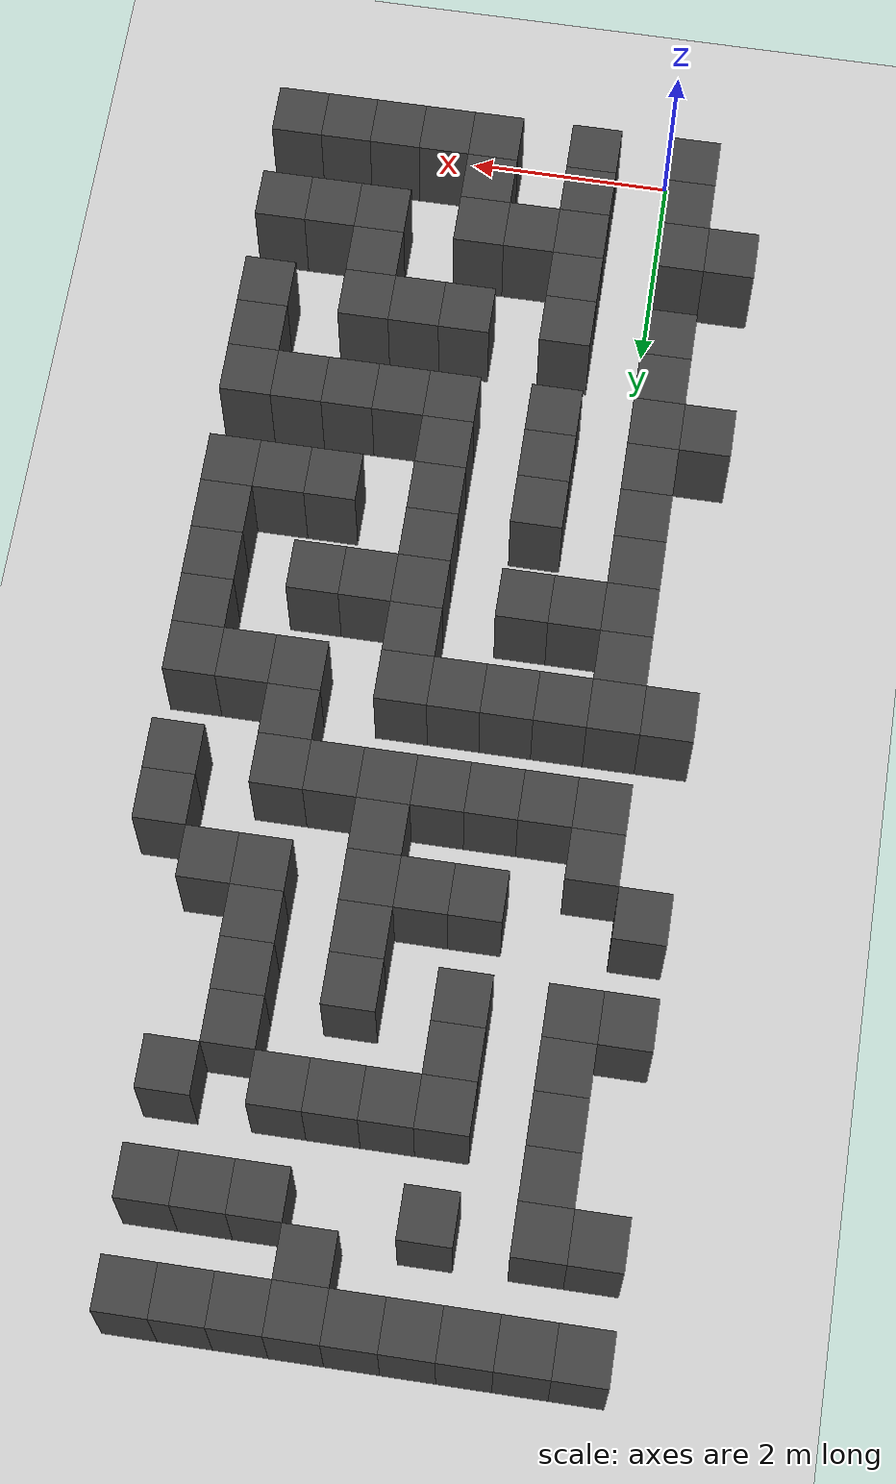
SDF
<sdf version="1.7">
 <world name="map_18347">
  <model name="ground_plane">
   <static>true</static>
   <link name="link">
    <collision name="collision">
     <geometry><plane><normal>0 0 1</normal><size>200 200</size></plane></geometry>
    </collision>
    <visual name="visual">
     <geometry><plane><normal>0 0 1</normal><size>200 200</size></plane></geometry>
     <material><ambient>0.8 0.8 0.8 1</ambient><diffuse>0.8 0.8 0.8 1</diffuse></material>
    </visual>
   </link>
  </model>
  <model name="maze_environment">
   <static>true</static>
   <link name="wall_23">
    <pose>-0.750 12.250 0.500 0 0 0</pose>
    <collision name="col"><geometry><box><size>0.5 0.5 1.0</size></box></geometry></collision>
    <visual name="vis">
     <geometry><box><size>0.5 0.5 1.0</size></box></geometry>
     <material><ambient>0.15 0.15 0.15 1</ambient><diffuse>0.25 0.25 0.25 1</diffuse></material>
    </visual>
   </link>
   <link name="wall_24">
    <pose>-0.250 12.250 0.500 0 0 0</pose>
    <collision name="col"><geometry><box><size>0.5 0.5 1.0</size></box></geometry></collision>
    <visual name="vis">
     <geometry><box><size>0.5 0.5 1.0</size></box></geometry>
     <material><ambient>0.15 0.15 0.15 1</ambient><diffuse>0.25 0.25 0.25 1</diffuse></material>
    </visual>
   </link>
   <link name="wall_25">
    <pose>0.250 12.250 0.500 0 0 0</pose>
    <collision name="col"><geometry><box><size>0.5 0.5 1.0</size></box></geometry></collision>
    <visual name="vis">
     <geometry><box><size>0.5 0.5 1.0</size></box></geometry>
     <material><ambient>0.15 0.15 0.15 1</ambient><diffuse>0.25 0.25 0.25 1</diffuse></material>
    </visual>
   </link>
   <link name="wall_26">
    <pose>0.750 12.250 0.500 0 0 0</pose>
    <collision name="col"><geometry><box><size>0.5 0.5 1.0</size></box></geometry></collision>
    <visual name="vis">
     <geometry><box><size>0.5 0.5 1.0</size></box></geometry>
     <material><ambient>0.15 0.15 0.15 1</ambient><diffuse>0.25 0.25 0.25 1</diffuse></material>
    </visual>
   </link>
   <link name="wall_27">
    <pose>1.250 12.250 0.500 0 0 0</pose>
    <collision name="col"><geometry><box><size>0.5 0.5 1.0</size></box></geometry></collision>
    <visual name="vis">
     <geometry><box><size>0.5 0.5 1.0</size></box></geometry>
     <material><ambient>0.15 0.15 0.15 1</ambient><diffuse>0.25 0.25 0.25 1</diffuse></material>
    </visual>
   </link>
   <link name="wall_28">
    <pose>1.750 12.250 0.500 0 0 0</pose>
    <collision name="col"><geometry><box><size>0.5 0.5 1.0</size></box></geometry></collision>
    <visual name="vis">
     <geometry><box><size>0.5 0.5 1.0</size></box></geometry>
     <material><ambient>0.15 0.15 0.15 1</ambient><diffuse>0.25 0.25 0.25 1</diffuse></material>
    </visual>
   </link>
   <link name="wall_29">
    <pose>2.250 12.250 0.500 0 0 0</pose>
    <collision name="col"><geometry><box><size>0.5 0.5 1.0</size></box></geometry></collision>
    <visual name="vis">
     <geometry><box><size>0.5 0.5 1.0</size></box></geometry>
     <material><ambient>0.15 0.15 0.15 1</ambient><diffuse>0.25 0.25 0.25 1</diffuse></material>
    </visual>
   </link>
   <link name="wall_30">
    <pose>2.750 12.250 0.500 0 0 0</pose>
    <collision name="col"><geometry><box><size>0.5 0.5 1.0</size></box></geometry></collision>
    <visual name="vis">
     <geometry><box><size>0.5 0.5 1.0</size></box></geometry>
     <material><ambient>0.15 0.15 0.15 1</ambient><diffuse>0.25 0.25 0.25 1</diffuse></material>
    </visual>
   </link>
   <link name="wall_31">
    <pose>3.250 12.250 0.500 0 0 0</pose>
    <collision name="col"><geometry><box><size>0.5 0.5 1.0</size></box></geometry></collision>
    <visual name="vis">
     <geometry><box><size>0.5 0.5 1.0</size></box></geometry>
     <material><ambient>0.15 0.15 0.15 1</ambient><diffuse>0.25 0.25 0.25 1</diffuse></material>
    </visual>
   </link>
   <link name="wall_54">
    <pose>1.750 11.750 0.500 0 0 0</pose>
    <collision name="col"><geometry><box><size>0.5 0.5 1.0</size></box></geometry></collision>
    <visual name="vis">
     <geometry><box><size>0.5 0.5 1.0</size></box></geometry>
     <material><ambient>0.15 0.15 0.15 1</ambient><diffuse>0.25 0.25 0.25 1</diffuse></material>
    </visual>
   </link>
   <link name="wall_75">
    <pose>-0.750 11.250 0.500 0 0 0</pose>
    <collision name="col"><geometry><box><size>0.5 0.5 1.0</size></box></geometry></collision>
    <visual name="vis">
     <geometry><box><size>0.5 0.5 1.0</size></box></geometry>
     <material><ambient>0.15 0.15 0.15 1</ambient><diffuse>0.25 0.25 0.25 1</diffuse></material>
    </visual>
   </link>
   <link name="wall_76">
    <pose>-0.250 11.250 0.500 0 0 0</pose>
    <collision name="col"><geometry><box><size>0.5 0.5 1.0</size></box></geometry></collision>
    <visual name="vis">
     <geometry><box><size>0.5 0.5 1.0</size></box></geometry>
     <material><ambient>0.15 0.15 0.15 1</ambient><diffuse>0.25 0.25 0.25 1</diffuse></material>
    </visual>
   </link>
   <link name="wall_77">
    <pose>0.750 11.250 0.500 0 0 0</pose>
    <collision name="col"><geometry><box><size>0.5 0.5 1.0</size></box></geometry></collision>
    <visual name="vis">
     <geometry><box><size>0.5 0.5 1.0</size></box></geometry>
     <material><ambient>0.15 0.15 0.15 1</ambient><diffuse>0.25 0.25 0.25 1</diffuse></material>
    </visual>
   </link>
   <link name="wall_78">
    <pose>2.250 11.250 0.500 0 0 0</pose>
    <collision name="col"><geometry><box><size>0.5 0.5 1.0</size></box></geometry></collision>
    <visual name="vis">
     <geometry><box><size>0.5 0.5 1.0</size></box></geometry>
     <material><ambient>0.15 0.15 0.15 1</ambient><diffuse>0.25 0.25 0.25 1</diffuse></material>
    </visual>
   </link>
   <link name="wall_79">
    <pose>2.750 11.250 0.500 0 0 0</pose>
    <collision name="col"><geometry><box><size>0.5 0.5 1.0</size></box></geometry></collision>
    <visual name="vis">
     <geometry><box><size>0.5 0.5 1.0</size></box></geometry>
     <material><ambient>0.15 0.15 0.15 1</ambient><diffuse>0.25 0.25 0.25 1</diffuse></material>
    </visual>
   </link>
   <link name="wall_80">
    <pose>3.250 11.250 0.500 0 0 0</pose>
    <collision name="col"><geometry><box><size>0.5 0.5 1.0</size></box></geometry></collision>
    <visual name="vis">
     <geometry><box><size>0.5 0.5 1.0</size></box></geometry>
     <material><ambient>0.15 0.15 0.15 1</ambient><diffuse>0.25 0.25 0.25 1</diffuse></material>
    </visual>
   </link>
   <link name="wall_99">
    <pose>-0.250 10.750 0.500 0 0 0</pose>
    <collision name="col"><geometry><box><size>0.5 0.5 1.0</size></box></geometry></collision>
    <visual name="vis">
     <geometry><box><size>0.5 0.5 1.0</size></box></geometry>
     <material><ambient>0.15 0.15 0.15 1</ambient><diffuse>0.25 0.25 0.25 1</diffuse></material>
    </visual>
   </link>
   <link name="wall_124">
    <pose>-0.250 10.250 0.500 0 0 0</pose>
    <collision name="col"><geometry><box><size>0.5 0.5 1.0</size></box></geometry></collision>
    <visual name="vis">
     <geometry><box><size>0.5 0.5 1.0</size></box></geometry>
     <material><ambient>0.15 0.15 0.15 1</ambient><diffuse>0.25 0.25 0.25 1</diffuse></material>
    </visual>
   </link>
   <link name="wall_125">
    <pose>0.750 10.250 0.500 0 0 0</pose>
    <collision name="col"><geometry><box><size>0.5 0.5 1.0</size></box></geometry></collision>
    <visual name="vis">
     <geometry><box><size>0.5 0.5 1.0</size></box></geometry>
     <material><ambient>0.15 0.15 0.15 1</ambient><diffuse>0.25 0.25 0.25 1</diffuse></material>
    </visual>
   </link>
   <link name="wall_126">
    <pose>1.250 10.250 0.500 0 0 0</pose>
    <collision name="col"><geometry><box><size>0.5 0.5 1.0</size></box></geometry></collision>
    <visual name="vis">
     <geometry><box><size>0.5 0.5 1.0</size></box></geometry>
     <material><ambient>0.15 0.15 0.15 1</ambient><diffuse>0.25 0.25 0.25 1</diffuse></material>
    </visual>
   </link>
   <link name="wall_127">
    <pose>1.750 10.250 0.500 0 0 0</pose>
    <collision name="col"><geometry><box><size>0.5 0.5 1.0</size></box></geometry></collision>
    <visual name="vis">
     <geometry><box><size>0.5 0.5 1.0</size></box></geometry>
     <material><ambient>0.15 0.15 0.15 1</ambient><diffuse>0.25 0.25 0.25 1</diffuse></material>
    </visual>
   </link>
   <link name="wall_128">
    <pose>2.250 10.250 0.500 0 0 0</pose>
    <collision name="col"><geometry><box><size>0.5 0.5 1.0</size></box></geometry></collision>
    <visual name="vis">
     <geometry><box><size>0.5 0.5 1.0</size></box></geometry>
     <material><ambient>0.15 0.15 0.15 1</ambient><diffuse>0.25 0.25 0.25 1</diffuse></material>
    </visual>
   </link>
   <link name="wall_129">
    <pose>3.250 10.250 0.500 0 0 0</pose>
    <collision name="col"><geometry><box><size>0.5 0.5 1.0</size></box></geometry></collision>
    <visual name="vis">
     <geometry><box><size>0.5 0.5 1.0</size></box></geometry>
     <material><ambient>0.15 0.15 0.15 1</ambient><diffuse>0.25 0.25 0.25 1</diffuse></material>
    </visual>
   </link>
   <link name="wall_150">
    <pose>-0.250 9.750 0.500 0 0 0</pose>
    <collision name="col"><geometry><box><size>0.5 0.5 1.0</size></box></geometry></collision>
    <visual name="vis">
     <geometry><box><size>0.5 0.5 1.0</size></box></geometry>
     <material><ambient>0.15 0.15 0.15 1</ambient><diffuse>0.25 0.25 0.25 1</diffuse></material>
    </visual>
   </link>
   <link name="wall_151">
    <pose>0.750 9.750 0.500 0 0 0</pose>
    <collision name="col"><geometry><box><size>0.5 0.5 1.0</size></box></geometry></collision>
    <visual name="vis">
     <geometry><box><size>0.5 0.5 1.0</size></box></geometry>
     <material><ambient>0.15 0.15 0.15 1</ambient><diffuse>0.25 0.25 0.25 1</diffuse></material>
    </visual>
   </link>
   <link name="wall_152">
    <pose>2.750 9.750 0.500 0 0 0</pose>
    <collision name="col"><geometry><box><size>0.5 0.5 1.0</size></box></geometry></collision>
    <visual name="vis">
     <geometry><box><size>0.5 0.5 1.0</size></box></geometry>
     <material><ambient>0.15 0.15 0.15 1</ambient><diffuse>0.25 0.25 0.25 1</diffuse></material>
    </visual>
   </link>
   <link name="wall_175">
    <pose>-0.750 9.250 0.500 0 0 0</pose>
    <collision name="col"><geometry><box><size>0.5 0.5 1.0</size></box></geometry></collision>
    <visual name="vis">
     <geometry><box><size>0.5 0.5 1.0</size></box></geometry>
     <material><ambient>0.15 0.15 0.15 1</ambient><diffuse>0.25 0.25 0.25 1</diffuse></material>
    </visual>
   </link>
   <link name="wall_176">
    <pose>-0.250 9.250 0.500 0 0 0</pose>
    <collision name="col"><geometry><box><size>0.5 0.5 1.0</size></box></geometry></collision>
    <visual name="vis">
     <geometry><box><size>0.5 0.5 1.0</size></box></geometry>
     <material><ambient>0.15 0.15 0.15 1</ambient><diffuse>0.25 0.25 0.25 1</diffuse></material>
    </visual>
   </link>
   <link name="wall_177">
    <pose>0.750 9.250 0.500 0 0 0</pose>
    <collision name="col"><geometry><box><size>0.5 0.5 1.0</size></box></geometry></collision>
    <visual name="vis">
     <geometry><box><size>0.5 0.5 1.0</size></box></geometry>
     <material><ambient>0.15 0.15 0.15 1</ambient><diffuse>0.25 0.25 0.25 1</diffuse></material>
    </visual>
   </link>
   <link name="wall_178">
    <pose>1.750 9.250 0.500 0 0 0</pose>
    <collision name="col"><geometry><box><size>0.5 0.5 1.0</size></box></geometry></collision>
    <visual name="vis">
     <geometry><box><size>0.5 0.5 1.0</size></box></geometry>
     <material><ambient>0.15 0.15 0.15 1</ambient><diffuse>0.25 0.25 0.25 1</diffuse></material>
    </visual>
   </link>
   <link name="wall_179">
    <pose>2.750 9.250 0.500 0 0 0</pose>
    <collision name="col"><geometry><box><size>0.5 0.5 1.0</size></box></geometry></collision>
    <visual name="vis">
     <geometry><box><size>0.5 0.5 1.0</size></box></geometry>
     <material><ambient>0.15 0.15 0.15 1</ambient><diffuse>0.25 0.25 0.25 1</diffuse></material>
    </visual>
   </link>
   <link name="wall_197">
    <pose>1.750 8.750 0.500 0 0 0</pose>
    <collision name="col"><geometry><box><size>0.5 0.5 1.0</size></box></geometry></collision>
    <visual name="vis">
     <geometry><box><size>0.5 0.5 1.0</size></box></geometry>
     <material><ambient>0.15 0.15 0.15 1</ambient><diffuse>0.25 0.25 0.25 1</diffuse></material>
    </visual>
   </link>
   <link name="wall_198">
    <pose>2.750 8.750 0.500 0 0 0</pose>
    <collision name="col"><geometry><box><size>0.5 0.5 1.0</size></box></geometry></collision>
    <visual name="vis">
     <geometry><box><size>0.5 0.5 1.0</size></box></geometry>
     <material><ambient>0.15 0.15 0.15 1</ambient><diffuse>0.25 0.25 0.25 1</diffuse></material>
    </visual>
   </link>
   <link name="wall_221">
    <pose>-0.750 8.250 0.500 0 0 0</pose>
    <collision name="col"><geometry><box><size>0.5 0.5 1.0</size></box></geometry></collision>
    <visual name="vis">
     <geometry><box><size>0.5 0.5 1.0</size></box></geometry>
     <material><ambient>0.15 0.15 0.15 1</ambient><diffuse>0.25 0.25 0.25 1</diffuse></material>
    </visual>
   </link>
   <link name="wall_222">
    <pose>0.750 8.250 0.500 0 0 0</pose>
    <collision name="col"><geometry><box><size>0.5 0.5 1.0</size></box></geometry></collision>
    <visual name="vis">
     <geometry><box><size>0.5 0.5 1.0</size></box></geometry>
     <material><ambient>0.15 0.15 0.15 1</ambient><diffuse>0.25 0.25 0.25 1</diffuse></material>
    </visual>
   </link>
   <link name="wall_223">
    <pose>1.250 8.250 0.500 0 0 0</pose>
    <collision name="col"><geometry><box><size>0.5 0.5 1.0</size></box></geometry></collision>
    <visual name="vis">
     <geometry><box><size>0.5 0.5 1.0</size></box></geometry>
     <material><ambient>0.15 0.15 0.15 1</ambient><diffuse>0.25 0.25 0.25 1</diffuse></material>
    </visual>
   </link>
   <link name="wall_224">
    <pose>1.750 8.250 0.500 0 0 0</pose>
    <collision name="col"><geometry><box><size>0.5 0.5 1.0</size></box></geometry></collision>
    <visual name="vis">
     <geometry><box><size>0.5 0.5 1.0</size></box></geometry>
     <material><ambient>0.15 0.15 0.15 1</ambient><diffuse>0.25 0.25 0.25 1</diffuse></material>
    </visual>
   </link>
   <link name="wall_225">
    <pose>2.750 8.250 0.500 0 0 0</pose>
    <collision name="col"><geometry><box><size>0.5 0.5 1.0</size></box></geometry></collision>
    <visual name="vis">
     <geometry><box><size>0.5 0.5 1.0</size></box></geometry>
     <material><ambient>0.15 0.15 0.15 1</ambient><diffuse>0.25 0.25 0.25 1</diffuse></material>
    </visual>
   </link>
   <link name="wall_226">
    <pose>3.250 8.250 0.500 0 0 0</pose>
    <collision name="col"><geometry><box><size>0.5 0.5 1.0</size></box></geometry></collision>
    <visual name="vis">
     <geometry><box><size>0.5 0.5 1.0</size></box></geometry>
     <material><ambient>0.15 0.15 0.15 1</ambient><diffuse>0.25 0.25 0.25 1</diffuse></material>
    </visual>
   </link>
   <link name="wall_249">
    <pose>-0.250 7.750 0.500 0 0 0</pose>
    <collision name="col"><geometry><box><size>0.5 0.5 1.0</size></box></geometry></collision>
    <visual name="vis">
     <geometry><box><size>0.5 0.5 1.0</size></box></geometry>
     <material><ambient>0.15 0.15 0.15 1</ambient><diffuse>0.25 0.25 0.25 1</diffuse></material>
    </visual>
   </link>
   <link name="wall_250">
    <pose>1.750 7.750 0.500 0 0 0</pose>
    <collision name="col"><geometry><box><size>0.5 0.5 1.0</size></box></geometry></collision>
    <visual name="vis">
     <geometry><box><size>0.5 0.5 1.0</size></box></geometry>
     <material><ambient>0.15 0.15 0.15 1</ambient><diffuse>0.25 0.25 0.25 1</diffuse></material>
    </visual>
   </link>
   <link name="wall_251">
    <pose>3.750 7.750 0.500 0 0 0</pose>
    <collision name="col"><geometry><box><size>0.5 0.5 1.0</size></box></geometry></collision>
    <visual name="vis">
     <geometry><box><size>0.5 0.5 1.0</size></box></geometry>
     <material><ambient>0.15 0.15 0.15 1</ambient><diffuse>0.25 0.25 0.25 1</diffuse></material>
    </visual>
   </link>
   <link name="wall_272">
    <pose>-0.250 7.250 0.500 0 0 0</pose>
    <collision name="col"><geometry><box><size>0.5 0.5 1.0</size></box></geometry></collision>
    <visual name="vis">
     <geometry><box><size>0.5 0.5 1.0</size></box></geometry>
     <material><ambient>0.15 0.15 0.15 1</ambient><diffuse>0.25 0.25 0.25 1</diffuse></material>
    </visual>
   </link>
   <link name="wall_273">
    <pose>0.250 7.250 0.500 0 0 0</pose>
    <collision name="col"><geometry><box><size>0.5 0.5 1.0</size></box></geometry></collision>
    <visual name="vis">
     <geometry><box><size>0.5 0.5 1.0</size></box></geometry>
     <material><ambient>0.15 0.15 0.15 1</ambient><diffuse>0.25 0.25 0.25 1</diffuse></material>
    </visual>
   </link>
   <link name="wall_274">
    <pose>0.750 7.250 0.500 0 0 0</pose>
    <collision name="col"><geometry><box><size>0.5 0.5 1.0</size></box></geometry></collision>
    <visual name="vis">
     <geometry><box><size>0.5 0.5 1.0</size></box></geometry>
     <material><ambient>0.15 0.15 0.15 1</ambient><diffuse>0.25 0.25 0.25 1</diffuse></material>
    </visual>
   </link>
   <link name="wall_275">
    <pose>1.250 7.250 0.500 0 0 0</pose>
    <collision name="col"><geometry><box><size>0.5 0.5 1.0</size></box></geometry></collision>
    <visual name="vis">
     <geometry><box><size>0.5 0.5 1.0</size></box></geometry>
     <material><ambient>0.15 0.15 0.15 1</ambient><diffuse>0.25 0.25 0.25 1</diffuse></material>
    </visual>
   </link>
   <link name="wall_276">
    <pose>1.750 7.250 0.500 0 0 0</pose>
    <collision name="col"><geometry><box><size>0.5 0.5 1.0</size></box></geometry></collision>
    <visual name="vis">
     <geometry><box><size>0.5 0.5 1.0</size></box></geometry>
     <material><ambient>0.15 0.15 0.15 1</ambient><diffuse>0.25 0.25 0.25 1</diffuse></material>
    </visual>
   </link>
   <link name="wall_277">
    <pose>2.250 7.250 0.500 0 0 0</pose>
    <collision name="col"><geometry><box><size>0.5 0.5 1.0</size></box></geometry></collision>
    <visual name="vis">
     <geometry><box><size>0.5 0.5 1.0</size></box></geometry>
     <material><ambient>0.15 0.15 0.15 1</ambient><diffuse>0.25 0.25 0.25 1</diffuse></material>
    </visual>
   </link>
   <link name="wall_278">
    <pose>2.750 7.250 0.500 0 0 0</pose>
    <collision name="col"><geometry><box><size>0.5 0.5 1.0</size></box></geometry></collision>
    <visual name="vis">
     <geometry><box><size>0.5 0.5 1.0</size></box></geometry>
     <material><ambient>0.15 0.15 0.15 1</ambient><diffuse>0.25 0.25 0.25 1</diffuse></material>
    </visual>
   </link>
   <link name="wall_279">
    <pose>3.750 7.250 0.500 0 0 0</pose>
    <collision name="col"><geometry><box><size>0.5 0.5 1.0</size></box></geometry></collision>
    <visual name="vis">
     <geometry><box><size>0.5 0.5 1.0</size></box></geometry>
     <material><ambient>0.15 0.15 0.15 1</ambient><diffuse>0.25 0.25 0.25 1</diffuse></material>
    </visual>
   </link>
   <link name="wall_298">
    <pose>2.750 6.750 0.500 0 0 0</pose>
    <collision name="col"><geometry><box><size>0.5 0.5 1.0</size></box></geometry></collision>
    <visual name="vis">
     <geometry><box><size>0.5 0.5 1.0</size></box></geometry>
     <material><ambient>0.15 0.15 0.15 1</ambient><diffuse>0.25 0.25 0.25 1</diffuse></material>
    </visual>
   </link>
   <link name="wall_319">
    <pose>-0.750 6.250 0.500 0 0 0</pose>
    <collision name="col"><geometry><box><size>0.5 0.5 1.0</size></box></geometry></collision>
    <visual name="vis">
     <geometry><box><size>0.5 0.5 1.0</size></box></geometry>
     <material><ambient>0.15 0.15 0.15 1</ambient><diffuse>0.25 0.25 0.25 1</diffuse></material>
    </visual>
   </link>
   <link name="wall_320">
    <pose>-0.250 6.250 0.500 0 0 0</pose>
    <collision name="col"><geometry><box><size>0.5 0.5 1.0</size></box></geometry></collision>
    <visual name="vis">
     <geometry><box><size>0.5 0.5 1.0</size></box></geometry>
     <material><ambient>0.15 0.15 0.15 1</ambient><diffuse>0.25 0.25 0.25 1</diffuse></material>
    </visual>
   </link>
   <link name="wall_321">
    <pose>0.250 6.250 0.500 0 0 0</pose>
    <collision name="col"><geometry><box><size>0.5 0.5 1.0</size></box></geometry></collision>
    <visual name="vis">
     <geometry><box><size>0.5 0.5 1.0</size></box></geometry>
     <material><ambient>0.15 0.15 0.15 1</ambient><diffuse>0.25 0.25 0.25 1</diffuse></material>
    </visual>
   </link>
   <link name="wall_322">
    <pose>0.750 6.250 0.500 0 0 0</pose>
    <collision name="col"><geometry><box><size>0.5 0.5 1.0</size></box></geometry></collision>
    <visual name="vis">
     <geometry><box><size>0.5 0.5 1.0</size></box></geometry>
     <material><ambient>0.15 0.15 0.15 1</ambient><diffuse>0.25 0.25 0.25 1</diffuse></material>
    </visual>
   </link>
   <link name="wall_323">
    <pose>1.250 6.250 0.500 0 0 0</pose>
    <collision name="col"><geometry><box><size>0.5 0.5 1.0</size></box></geometry></collision>
    <visual name="vis">
     <geometry><box><size>0.5 0.5 1.0</size></box></geometry>
     <material><ambient>0.15 0.15 0.15 1</ambient><diffuse>0.25 0.25 0.25 1</diffuse></material>
    </visual>
   </link>
   <link name="wall_324">
    <pose>1.750 6.250 0.500 0 0 0</pose>
    <collision name="col"><geometry><box><size>0.5 0.5 1.0</size></box></geometry></collision>
    <visual name="vis">
     <geometry><box><size>0.5 0.5 1.0</size></box></geometry>
     <material><ambient>0.15 0.15 0.15 1</ambient><diffuse>0.25 0.25 0.25 1</diffuse></material>
    </visual>
   </link>
   <link name="wall_325">
    <pose>2.750 6.250 0.500 0 0 0</pose>
    <collision name="col"><geometry><box><size>0.5 0.5 1.0</size></box></geometry></collision>
    <visual name="vis">
     <geometry><box><size>0.5 0.5 1.0</size></box></geometry>
     <material><ambient>0.15 0.15 0.15 1</ambient><diffuse>0.25 0.25 0.25 1</diffuse></material>
    </visual>
   </link>
   <link name="wall_326">
    <pose>3.250 6.250 0.500 0 0 0</pose>
    <collision name="col"><geometry><box><size>0.5 0.5 1.0</size></box></geometry></collision>
    <visual name="vis">
     <geometry><box><size>0.5 0.5 1.0</size></box></geometry>
     <material><ambient>0.15 0.15 0.15 1</ambient><diffuse>0.25 0.25 0.25 1</diffuse></material>
    </visual>
   </link>
   <link name="wall_327">
    <pose>3.750 6.250 0.500 0 0 0</pose>
    <collision name="col"><geometry><box><size>0.5 0.5 1.0</size></box></geometry></collision>
    <visual name="vis">
     <geometry><box><size>0.5 0.5 1.0</size></box></geometry>
     <material><ambient>0.15 0.15 0.15 1</ambient><diffuse>0.25 0.25 0.25 1</diffuse></material>
    </visual>
   </link>
   <link name="wall_346">
    <pose>-0.250 5.750 0.500 0 0 0</pose>
    <collision name="col"><geometry><box><size>0.5 0.5 1.0</size></box></geometry></collision>
    <visual name="vis">
     <geometry><box><size>0.5 0.5 1.0</size></box></geometry>
     <material><ambient>0.15 0.15 0.15 1</ambient><diffuse>0.25 0.25 0.25 1</diffuse></material>
    </visual>
   </link>
   <link name="wall_347">
    <pose>1.750 5.750 0.500 0 0 0</pose>
    <collision name="col"><geometry><box><size>0.5 0.5 1.0</size></box></geometry></collision>
    <visual name="vis">
     <geometry><box><size>0.5 0.5 1.0</size></box></geometry>
     <material><ambient>0.15 0.15 0.15 1</ambient><diffuse>0.25 0.25 0.25 1</diffuse></material>
    </visual>
   </link>
   <link name="wall_348">
    <pose>3.750 5.750 0.500 0 0 0</pose>
    <collision name="col"><geometry><box><size>0.5 0.5 1.0</size></box></geometry></collision>
    <visual name="vis">
     <geometry><box><size>0.5 0.5 1.0</size></box></geometry>
     <material><ambient>0.15 0.15 0.15 1</ambient><diffuse>0.25 0.25 0.25 1</diffuse></material>
    </visual>
   </link>
   <link name="wall_373">
    <pose>-0.250 5.250 0.500 0 0 0</pose>
    <collision name="col"><geometry><box><size>0.5 0.5 1.0</size></box></geometry></collision>
    <visual name="vis">
     <geometry><box><size>0.5 0.5 1.0</size></box></geometry>
     <material><ambient>0.15 0.15 0.15 1</ambient><diffuse>0.25 0.25 0.25 1</diffuse></material>
    </visual>
   </link>
   <link name="wall_374">
    <pose>0.250 5.250 0.500 0 0 0</pose>
    <collision name="col"><geometry><box><size>0.5 0.5 1.0</size></box></geometry></collision>
    <visual name="vis">
     <geometry><box><size>0.5 0.5 1.0</size></box></geometry>
     <material><ambient>0.15 0.15 0.15 1</ambient><diffuse>0.25 0.25 0.25 1</diffuse></material>
    </visual>
   </link>
   <link name="wall_375">
    <pose>0.750 5.250 0.500 0 0 0</pose>
    <collision name="col"><geometry><box><size>0.5 0.5 1.0</size></box></geometry></collision>
    <visual name="vis">
     <geometry><box><size>0.5 0.5 1.0</size></box></geometry>
     <material><ambient>0.15 0.15 0.15 1</ambient><diffuse>0.25 0.25 0.25 1</diffuse></material>
    </visual>
   </link>
   <link name="wall_376">
    <pose>1.750 5.250 0.500 0 0 0</pose>
    <collision name="col"><geometry><box><size>0.5 0.5 1.0</size></box></geometry></collision>
    <visual name="vis">
     <geometry><box><size>0.5 0.5 1.0</size></box></geometry>
     <material><ambient>0.15 0.15 0.15 1</ambient><diffuse>0.25 0.25 0.25 1</diffuse></material>
    </visual>
   </link>
   <link name="wall_377">
    <pose>2.250 5.250 0.500 0 0 0</pose>
    <collision name="col"><geometry><box><size>0.5 0.5 1.0</size></box></geometry></collision>
    <visual name="vis">
     <geometry><box><size>0.5 0.5 1.0</size></box></geometry>
     <material><ambient>0.15 0.15 0.15 1</ambient><diffuse>0.25 0.25 0.25 1</diffuse></material>
    </visual>
   </link>
   <link name="wall_378">
    <pose>2.750 5.250 0.500 0 0 0</pose>
    <collision name="col"><geometry><box><size>0.5 0.5 1.0</size></box></geometry></collision>
    <visual name="vis">
     <geometry><box><size>0.5 0.5 1.0</size></box></geometry>
     <material><ambient>0.15 0.15 0.15 1</ambient><diffuse>0.25 0.25 0.25 1</diffuse></material>
    </visual>
   </link>
   <link name="wall_379">
    <pose>3.750 5.250 0.500 0 0 0</pose>
    <collision name="col"><geometry><box><size>0.5 0.5 1.0</size></box></geometry></collision>
    <visual name="vis">
     <geometry><box><size>0.5 0.5 1.0</size></box></geometry>
     <material><ambient>0.15 0.15 0.15 1</ambient><diffuse>0.25 0.25 0.25 1</diffuse></material>
    </visual>
   </link>
   <link name="wall_396">
    <pose>-0.250 4.750 0.500 0 0 0</pose>
    <collision name="col"><geometry><box><size>0.5 0.5 1.0</size></box></geometry></collision>
    <visual name="vis">
     <geometry><box><size>0.5 0.5 1.0</size></box></geometry>
     <material><ambient>0.15 0.15 0.15 1</ambient><diffuse>0.25 0.25 0.25 1</diffuse></material>
    </visual>
   </link>
   <link name="wall_397">
    <pose>1.750 4.750 0.500 0 0 0</pose>
    <collision name="col"><geometry><box><size>0.5 0.5 1.0</size></box></geometry></collision>
    <visual name="vis">
     <geometry><box><size>0.5 0.5 1.0</size></box></geometry>
     <material><ambient>0.15 0.15 0.15 1</ambient><diffuse>0.25 0.25 0.25 1</diffuse></material>
    </visual>
   </link>
   <link name="wall_398">
    <pose>3.750 4.750 0.500 0 0 0</pose>
    <collision name="col"><geometry><box><size>0.5 0.5 1.0</size></box></geometry></collision>
    <visual name="vis">
     <geometry><box><size>0.5 0.5 1.0</size></box></geometry>
     <material><ambient>0.15 0.15 0.15 1</ambient><diffuse>0.25 0.25 0.25 1</diffuse></material>
    </visual>
   </link>
   <link name="wall_421">
    <pose>-0.250 4.250 0.500 0 0 0</pose>
    <collision name="col"><geometry><box><size>0.5 0.5 1.0</size></box></geometry></collision>
    <visual name="vis">
     <geometry><box><size>0.5 0.5 1.0</size></box></geometry>
     <material><ambient>0.15 0.15 0.15 1</ambient><diffuse>0.25 0.25 0.25 1</diffuse></material>
    </visual>
   </link>
   <link name="wall_422">
    <pose>0.750 4.250 0.500 0 0 0</pose>
    <collision name="col"><geometry><box><size>0.5 0.5 1.0</size></box></geometry></collision>
    <visual name="vis">
     <geometry><box><size>0.5 0.5 1.0</size></box></geometry>
     <material><ambient>0.15 0.15 0.15 1</ambient><diffuse>0.25 0.25 0.25 1</diffuse></material>
    </visual>
   </link>
   <link name="wall_423">
    <pose>1.750 4.250 0.500 0 0 0</pose>
    <collision name="col"><geometry><box><size>0.5 0.5 1.0</size></box></geometry></collision>
    <visual name="vis">
     <geometry><box><size>0.5 0.5 1.0</size></box></geometry>
     <material><ambient>0.15 0.15 0.15 1</ambient><diffuse>0.25 0.25 0.25 1</diffuse></material>
    </visual>
   </link>
   <link name="wall_424">
    <pose>2.750 4.250 0.500 0 0 0</pose>
    <collision name="col"><geometry><box><size>0.5 0.5 1.0</size></box></geometry></collision>
    <visual name="vis">
     <geometry><box><size>0.5 0.5 1.0</size></box></geometry>
     <material><ambient>0.15 0.15 0.15 1</ambient><diffuse>0.25 0.25 0.25 1</diffuse></material>
    </visual>
   </link>
   <link name="wall_425">
    <pose>3.250 4.250 0.500 0 0 0</pose>
    <collision name="col"><geometry><box><size>0.5 0.5 1.0</size></box></geometry></collision>
    <visual name="vis">
     <geometry><box><size>0.5 0.5 1.0</size></box></geometry>
     <material><ambient>0.15 0.15 0.15 1</ambient><diffuse>0.25 0.25 0.25 1</diffuse></material>
    </visual>
   </link>
   <link name="wall_426">
    <pose>3.750 4.250 0.500 0 0 0</pose>
    <collision name="col"><geometry><box><size>0.5 0.5 1.0</size></box></geometry></collision>
    <visual name="vis">
     <geometry><box><size>0.5 0.5 1.0</size></box></geometry>
     <material><ambient>0.15 0.15 0.15 1</ambient><diffuse>0.25 0.25 0.25 1</diffuse></material>
    </visual>
   </link>
   <link name="wall_450">
    <pose>-0.250 3.750 0.500 0 0 0</pose>
    <collision name="col"><geometry><box><size>0.5 0.5 1.0</size></box></geometry></collision>
    <visual name="vis">
     <geometry><box><size>0.5 0.5 1.0</size></box></geometry>
     <material><ambient>0.15 0.15 0.15 1</ambient><diffuse>0.25 0.25 0.25 1</diffuse></material>
    </visual>
   </link>
   <link name="wall_451">
    <pose>0.750 3.750 0.500 0 0 0</pose>
    <collision name="col"><geometry><box><size>0.5 0.5 1.0</size></box></geometry></collision>
    <visual name="vis">
     <geometry><box><size>0.5 0.5 1.0</size></box></geometry>
     <material><ambient>0.15 0.15 0.15 1</ambient><diffuse>0.25 0.25 0.25 1</diffuse></material>
    </visual>
   </link>
   <link name="wall_452">
    <pose>1.750 3.750 0.500 0 0 0</pose>
    <collision name="col"><geometry><box><size>0.5 0.5 1.0</size></box></geometry></collision>
    <visual name="vis">
     <geometry><box><size>0.5 0.5 1.0</size></box></geometry>
     <material><ambient>0.15 0.15 0.15 1</ambient><diffuse>0.25 0.25 0.25 1</diffuse></material>
    </visual>
   </link>
   <link name="wall_472">
    <pose>-0.750 3.250 0.500 0 0 0</pose>
    <collision name="col"><geometry><box><size>0.5 0.5 1.0</size></box></geometry></collision>
    <visual name="vis">
     <geometry><box><size>0.5 0.5 1.0</size></box></geometry>
     <material><ambient>0.15 0.15 0.15 1</ambient><diffuse>0.25 0.25 0.25 1</diffuse></material>
    </visual>
   </link>
   <link name="wall_473">
    <pose>-0.250 3.250 0.500 0 0 0</pose>
    <collision name="col"><geometry><box><size>0.5 0.5 1.0</size></box></geometry></collision>
    <visual name="vis">
     <geometry><box><size>0.5 0.5 1.0</size></box></geometry>
     <material><ambient>0.15 0.15 0.15 1</ambient><diffuse>0.25 0.25 0.25 1</diffuse></material>
    </visual>
   </link>
   <link name="wall_474">
    <pose>0.750 3.250 0.500 0 0 0</pose>
    <collision name="col"><geometry><box><size>0.5 0.5 1.0</size></box></geometry></collision>
    <visual name="vis">
     <geometry><box><size>0.5 0.5 1.0</size></box></geometry>
     <material><ambient>0.15 0.15 0.15 1</ambient><diffuse>0.25 0.25 0.25 1</diffuse></material>
    </visual>
   </link>
   <link name="wall_475">
    <pose>1.750 3.250 0.500 0 0 0</pose>
    <collision name="col"><geometry><box><size>0.5 0.5 1.0</size></box></geometry></collision>
    <visual name="vis">
     <geometry><box><size>0.5 0.5 1.0</size></box></geometry>
     <material><ambient>0.15 0.15 0.15 1</ambient><diffuse>0.25 0.25 0.25 1</diffuse></material>
    </visual>
   </link>
   <link name="wall_476">
    <pose>2.250 3.250 0.500 0 0 0</pose>
    <collision name="col"><geometry><box><size>0.5 0.5 1.0</size></box></geometry></collision>
    <visual name="vis">
     <geometry><box><size>0.5 0.5 1.0</size></box></geometry>
     <material><ambient>0.15 0.15 0.15 1</ambient><diffuse>0.25 0.25 0.25 1</diffuse></material>
    </visual>
   </link>
   <link name="wall_477">
    <pose>2.750 3.250 0.500 0 0 0</pose>
    <collision name="col"><geometry><box><size>0.5 0.5 1.0</size></box></geometry></collision>
    <visual name="vis">
     <geometry><box><size>0.5 0.5 1.0</size></box></geometry>
     <material><ambient>0.15 0.15 0.15 1</ambient><diffuse>0.25 0.25 0.25 1</diffuse></material>
    </visual>
   </link>
   <link name="wall_478">
    <pose>3.250 3.250 0.500 0 0 0</pose>
    <collision name="col"><geometry><box><size>0.5 0.5 1.0</size></box></geometry></collision>
    <visual name="vis">
     <geometry><box><size>0.5 0.5 1.0</size></box></geometry>
     <material><ambient>0.15 0.15 0.15 1</ambient><diffuse>0.25 0.25 0.25 1</diffuse></material>
    </visual>
   </link>
   <link name="wall_479">
    <pose>3.750 3.250 0.500 0 0 0</pose>
    <collision name="col"><geometry><box><size>0.5 0.5 1.0</size></box></geometry></collision>
    <visual name="vis">
     <geometry><box><size>0.5 0.5 1.0</size></box></geometry>
     <material><ambient>0.15 0.15 0.15 1</ambient><diffuse>0.25 0.25 0.25 1</diffuse></material>
    </visual>
   </link>
   <link name="wall_498">
    <pose>-0.250 2.750 0.500 0 0 0</pose>
    <collision name="col"><geometry><box><size>0.5 0.5 1.0</size></box></geometry></collision>
    <visual name="vis">
     <geometry><box><size>0.5 0.5 1.0</size></box></geometry>
     <material><ambient>0.15 0.15 0.15 1</ambient><diffuse>0.25 0.25 0.25 1</diffuse></material>
    </visual>
   </link>
   <link name="wall_499">
    <pose>3.750 2.750 0.500 0 0 0</pose>
    <collision name="col"><geometry><box><size>0.5 0.5 1.0</size></box></geometry></collision>
    <visual name="vis">
     <geometry><box><size>0.5 0.5 1.0</size></box></geometry>
     <material><ambient>0.15 0.15 0.15 1</ambient><diffuse>0.25 0.25 0.25 1</diffuse></material>
    </visual>
   </link>
   <link name="wall_525">
    <pose>-0.250 2.250 0.500 0 0 0</pose>
    <collision name="col"><geometry><box><size>0.5 0.5 1.0</size></box></geometry></collision>
    <visual name="vis">
     <geometry><box><size>0.5 0.5 1.0</size></box></geometry>
     <material><ambient>0.15 0.15 0.15 1</ambient><diffuse>0.25 0.25 0.25 1</diffuse></material>
    </visual>
   </link>
   <link name="wall_526">
    <pose>0.750 2.250 0.500 0 0 0</pose>
    <collision name="col"><geometry><box><size>0.5 0.5 1.0</size></box></geometry></collision>
    <visual name="vis">
     <geometry><box><size>0.5 0.5 1.0</size></box></geometry>
     <material><ambient>0.15 0.15 0.15 1</ambient><diffuse>0.25 0.25 0.25 1</diffuse></material>
    </visual>
   </link>
   <link name="wall_527">
    <pose>1.750 2.250 0.500 0 0 0</pose>
    <collision name="col"><geometry><box><size>0.5 0.5 1.0</size></box></geometry></collision>
    <visual name="vis">
     <geometry><box><size>0.5 0.5 1.0</size></box></geometry>
     <material><ambient>0.15 0.15 0.15 1</ambient><diffuse>0.25 0.25 0.25 1</diffuse></material>
    </visual>
   </link>
   <link name="wall_528">
    <pose>2.250 2.250 0.500 0 0 0</pose>
    <collision name="col"><geometry><box><size>0.5 0.5 1.0</size></box></geometry></collision>
    <visual name="vis">
     <geometry><box><size>0.5 0.5 1.0</size></box></geometry>
     <material><ambient>0.15 0.15 0.15 1</ambient><diffuse>0.25 0.25 0.25 1</diffuse></material>
    </visual>
   </link>
   <link name="wall_529">
    <pose>2.750 2.250 0.500 0 0 0</pose>
    <collision name="col"><geometry><box><size>0.5 0.5 1.0</size></box></geometry></collision>
    <visual name="vis">
     <geometry><box><size>0.5 0.5 1.0</size></box></geometry>
     <material><ambient>0.15 0.15 0.15 1</ambient><diffuse>0.25 0.25 0.25 1</diffuse></material>
    </visual>
   </link>
   <link name="wall_530">
    <pose>3.750 2.250 0.500 0 0 0</pose>
    <collision name="col"><geometry><box><size>0.5 0.5 1.0</size></box></geometry></collision>
    <visual name="vis">
     <geometry><box><size>0.5 0.5 1.0</size></box></geometry>
     <material><ambient>0.15 0.15 0.15 1</ambient><diffuse>0.25 0.25 0.25 1</diffuse></material>
    </visual>
   </link>
   <link name="wall_547">
    <pose>0.750 1.750 0.500 0 0 0</pose>
    <collision name="col"><geometry><box><size>0.5 0.5 1.0</size></box></geometry></collision>
    <visual name="vis">
     <geometry><box><size>0.5 0.5 1.0</size></box></geometry>
     <material><ambient>0.15 0.15 0.15 1</ambient><diffuse>0.25 0.25 0.25 1</diffuse></material>
    </visual>
   </link>
   <link name="wall_548">
    <pose>2.750 1.750 0.500 0 0 0</pose>
    <collision name="col"><geometry><box><size>0.5 0.5 1.0</size></box></geometry></collision>
    <visual name="vis">
     <geometry><box><size>0.5 0.5 1.0</size></box></geometry>
     <material><ambient>0.15 0.15 0.15 1</ambient><diffuse>0.25 0.25 0.25 1</diffuse></material>
    </visual>
   </link>
   <link name="wall_572">
    <pose>-0.750 1.250 0.500 0 0 0</pose>
    <collision name="col"><geometry><box><size>0.5 0.5 1.0</size></box></geometry></collision>
    <visual name="vis">
     <geometry><box><size>0.5 0.5 1.0</size></box></geometry>
     <material><ambient>0.15 0.15 0.15 1</ambient><diffuse>0.25 0.25 0.25 1</diffuse></material>
    </visual>
   </link>
   <link name="wall_573">
    <pose>-0.250 1.250 0.500 0 0 0</pose>
    <collision name="col"><geometry><box><size>0.5 0.5 1.0</size></box></geometry></collision>
    <visual name="vis">
     <geometry><box><size>0.5 0.5 1.0</size></box></geometry>
     <material><ambient>0.15 0.15 0.15 1</ambient><diffuse>0.25 0.25 0.25 1</diffuse></material>
    </visual>
   </link>
   <link name="wall_574">
    <pose>0.750 1.250 0.500 0 0 0</pose>
    <collision name="col"><geometry><box><size>0.5 0.5 1.0</size></box></geometry></collision>
    <visual name="vis">
     <geometry><box><size>0.5 0.5 1.0</size></box></geometry>
     <material><ambient>0.15 0.15 0.15 1</ambient><diffuse>0.25 0.25 0.25 1</diffuse></material>
    </visual>
   </link>
   <link name="wall_575">
    <pose>1.250 1.250 0.500 0 0 0</pose>
    <collision name="col"><geometry><box><size>0.5 0.5 1.0</size></box></geometry></collision>
    <visual name="vis">
     <geometry><box><size>0.5 0.5 1.0</size></box></geometry>
     <material><ambient>0.15 0.15 0.15 1</ambient><diffuse>0.25 0.25 0.25 1</diffuse></material>
    </visual>
   </link>
   <link name="wall_576">
    <pose>1.750 1.250 0.500 0 0 0</pose>
    <collision name="col"><geometry><box><size>0.5 0.5 1.0</size></box></geometry></collision>
    <visual name="vis">
     <geometry><box><size>0.5 0.5 1.0</size></box></geometry>
     <material><ambient>0.15 0.15 0.15 1</ambient><diffuse>0.25 0.25 0.25 1</diffuse></material>
    </visual>
   </link>
   <link name="wall_577">
    <pose>2.750 1.250 0.500 0 0 0</pose>
    <collision name="col"><geometry><box><size>0.5 0.5 1.0</size></box></geometry></collision>
    <visual name="vis">
     <geometry><box><size>0.5 0.5 1.0</size></box></geometry>
     <material><ambient>0.15 0.15 0.15 1</ambient><diffuse>0.25 0.25 0.25 1</diffuse></material>
    </visual>
   </link>
   <link name="wall_578">
    <pose>3.250 1.250 0.500 0 0 0</pose>
    <collision name="col"><geometry><box><size>0.5 0.5 1.0</size></box></geometry></collision>
    <visual name="vis">
     <geometry><box><size>0.5 0.5 1.0</size></box></geometry>
     <material><ambient>0.15 0.15 0.15 1</ambient><diffuse>0.25 0.25 0.25 1</diffuse></material>
    </visual>
   </link>
   <link name="wall_579">
    <pose>3.750 1.250 0.500 0 0 0</pose>
    <collision name="col"><geometry><box><size>0.5 0.5 1.0</size></box></geometry></collision>
    <visual name="vis">
     <geometry><box><size>0.5 0.5 1.0</size></box></geometry>
     <material><ambient>0.15 0.15 0.15 1</ambient><diffuse>0.25 0.25 0.25 1</diffuse></material>
    </visual>
   </link>
   <link name="wall_598">
    <pose>-0.250 0.750 0.500 0 0 0</pose>
    <collision name="col"><geometry><box><size>0.5 0.5 1.0</size></box></geometry></collision>
    <visual name="vis">
     <geometry><box><size>0.5 0.5 1.0</size></box></geometry>
     <material><ambient>0.15 0.15 0.15 1</ambient><diffuse>0.25 0.25 0.25 1</diffuse></material>
    </visual>
   </link>
   <link name="wall_599">
    <pose>0.750 0.750 0.500 0 0 0</pose>
    <collision name="col"><geometry><box><size>0.5 0.5 1.0</size></box></geometry></collision>
    <visual name="vis">
     <geometry><box><size>0.5 0.5 1.0</size></box></geometry>
     <material><ambient>0.15 0.15 0.15 1</ambient><diffuse>0.25 0.25 0.25 1</diffuse></material>
    </visual>
   </link>
   <link name="wall_600">
    <pose>1.750 0.750 0.500 0 0 0</pose>
    <collision name="col"><geometry><box><size>0.5 0.5 1.0</size></box></geometry></collision>
    <visual name="vis">
     <geometry><box><size>0.5 0.5 1.0</size></box></geometry>
     <material><ambient>0.15 0.15 0.15 1</ambient><diffuse>0.25 0.25 0.25 1</diffuse></material>
    </visual>
   </link>
   <link name="wall_624">
    <pose>-0.250 0.250 0.500 0 0 0</pose>
    <collision name="col"><geometry><box><size>0.5 0.5 1.0</size></box></geometry></collision>
    <visual name="vis">
     <geometry><box><size>0.5 0.5 1.0</size></box></geometry>
     <material><ambient>0.15 0.15 0.15 1</ambient><diffuse>0.25 0.25 0.25 1</diffuse></material>
    </visual>
   </link>
   <link name="wall_625">
    <pose>0.750 0.250 0.500 0 0 0</pose>
    <collision name="col"><geometry><box><size>0.5 0.5 1.0</size></box></geometry></collision>
    <visual name="vis">
     <geometry><box><size>0.5 0.5 1.0</size></box></geometry>
     <material><ambient>0.15 0.15 0.15 1</ambient><diffuse>0.25 0.25 0.25 1</diffuse></material>
    </visual>
   </link>
   <link name="wall_626">
    <pose>1.750 0.250 0.500 0 0 0</pose>
    <collision name="col"><geometry><box><size>0.5 0.5 1.0</size></box></geometry></collision>
    <visual name="vis">
     <geometry><box><size>0.5 0.5 1.0</size></box></geometry>
     <material><ambient>0.15 0.15 0.15 1</ambient><diffuse>0.25 0.25 0.25 1</diffuse></material>
    </visual>
   </link>
   <link name="wall_627">
    <pose>2.250 0.250 0.500 0 0 0</pose>
    <collision name="col"><geometry><box><size>0.5 0.5 1.0</size></box></geometry></collision>
    <visual name="vis">
     <geometry><box><size>0.5 0.5 1.0</size></box></geometry>
     <material><ambient>0.15 0.15 0.15 1</ambient><diffuse>0.25 0.25 0.25 1</diffuse></material>
    </visual>
   </link>
   <link name="wall_628">
    <pose>2.750 0.250 0.500 0 0 0</pose>
    <collision name="col"><geometry><box><size>0.5 0.5 1.0</size></box></geometry></collision>
    <visual name="vis">
     <geometry><box><size>0.5 0.5 1.0</size></box></geometry>
     <material><ambient>0.15 0.15 0.15 1</ambient><diffuse>0.25 0.25 0.25 1</diffuse></material>
    </visual>
   </link>
   <link name="wall_629">
    <pose>3.250 0.250 0.500 0 0 0</pose>
    <collision name="col"><geometry><box><size>0.5 0.5 1.0</size></box></geometry></collision>
    <visual name="vis">
     <geometry><box><size>0.5 0.5 1.0</size></box></geometry>
     <material><ambient>0.15 0.15 0.15 1</ambient><diffuse>0.25 0.25 0.25 1</diffuse></material>
    </visual>
   </link>
   <link name="wall_630">
    <pose>3.750 0.250 0.500 0 0 0</pose>
    <collision name="col"><geometry><box><size>0.5 0.5 1.0</size></box></geometry></collision>
    <visual name="vis">
     <geometry><box><size>0.5 0.5 1.0</size></box></geometry>
     <material><ambient>0.15 0.15 0.15 1</ambient><diffuse>0.25 0.25 0.25 1</diffuse></material>
    </visual>
   </link>
  </model>
 </world>
</sdf>
